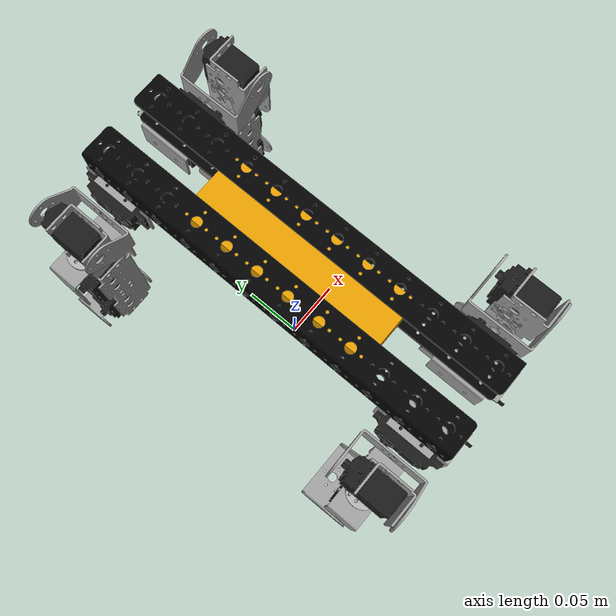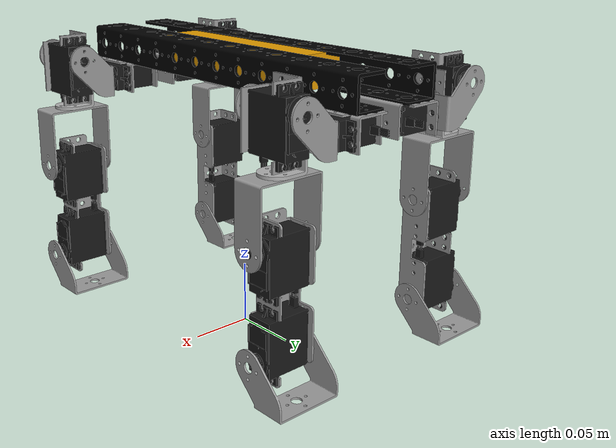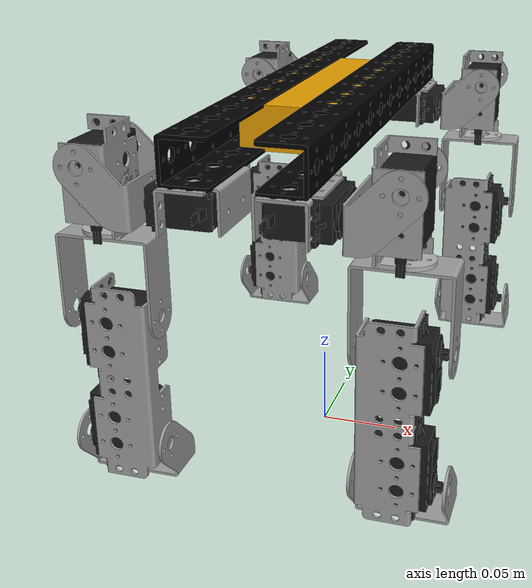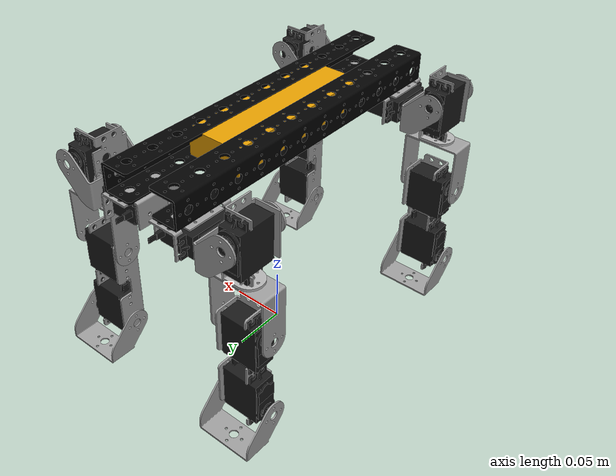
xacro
<?xml version="1.0"?>
<robot xmlns:xacro="http://www.ros.org/wiki/xacro" name="qp4">

	<xacro:property name="qp4_height" value="0.22" />

    <xacro:property name="cad_dir" value="file://$(find qp4_description)/../../assets/cad"/>

	<!-- Typically, STL/DAE model units are in mm, but RViz units are in m, hence models must be scaled down by 1000. -->
    <xacro:macro name="default_geometry" params="cad_file extension:=dae">
        <geometry>
           <mesh filename="${cad_dir}/${cad_file}.${extension}" scale="0.001 0.001 0.001"/>
        </geometry>
    </xacro:macro>

    <xacro:macro name="z_rot">
        <axis xyz="0 0 1"/>
    </xacro:macro>

	<xacro:include filename="$(find qp4_description)/urdf/qp4_materials.xacro"/>

    <xacro:include filename="$(find qp4_description)/urdf/qp4_parts_v2.xacro"/>

	<link name="base_link"></link>

 	<joint name="base_to_torso" type="fixed">
		<parent link="base_link"/>
		<child link="torso_link"/>
		<origin xyz="0 0 ${qp4_height}"/>
    </joint>

</robot>

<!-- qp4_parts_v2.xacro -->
<!-- QP4 parts -->
<robot xmlns:xacro="http://www.ros.org/wiki/xacro">

	<xacro:property name="eighth_inch" value="0.003175"/>
    <xacro:property name="quarter_inch" value="0.00635"/>
    <xacro:property name="half_inch" value="0.0127"/>
    <xacro:property name="inch" value="0.0254"/>

	<xacro:property name="body_length" value="${12*inch}"/>
    <xacro:property name="body_width" value="${3*inch}"/>

    <!-- Torso -->

    <link name="torso_link">
		<visual>
            <xacro:default_geometry cad_file="asb-512-black"/>
            <origin xyz="-${body_width/2} -${body_length/2} 0" rpy="${pi/2} -${pi/2} 0"/>
		</visual>
		<visual>
            <xacro:default_geometry cad_file="asb-512-black"/>
            <origin xyz="${body_width/2} -${body_length/2} 0" rpy="${pi/2} ${pi/2} 0"/>
		</visual>
		<visual>
        	<xacro:default_geometry cad_file="asb-04"/>
			<origin xyz="${(body_width/2) - half_inch} ${-((body_length/2)-inch)} ${-half_inch}" rpy="${-pi/2} 0 ${pi/2}"/>
		</visual>
		<visual>
	        <xacro:default_geometry cad_file="hs-645-mg"/>
	        <origin xyz="${(body_width/2) - inch} ${-((body_length/2)-inch)} ${-inch}" rpy="0 ${pi/2} 0"/>
		</visual>
		<visual>
        	<xacro:default_geometry cad_file="asb-04"/>
			<origin xyz="${(body_width/2) - half_inch} ${(body_length/2)-inch} ${-half_inch}" rpy="${-pi/2} 0 ${pi/2}"/>
		</visual>
		<visual>
	        <xacro:default_geometry cad_file="hs-645-mg"/>
	        <origin xyz="${(body_width/2) - inch} ${((body_length/2)-inch)} ${-inch}" rpy="0 ${-pi/2} ${pi}"/>
		</visual>
		<visual>
        	<xacro:default_geometry cad_file="asb-04"/>
			<origin xyz="${-((body_width/2) - half_inch)} ${-((body_length/2)-inch)} ${-half_inch}" rpy="${-pi/2} 0 ${-pi/2}"/>
		</visual>
		<visual>
	        <xacro:default_geometry cad_file="hs-645-mg"/>
	        <origin xyz="${-((body_width/2) - inch)} ${-((body_length/2)-inch)} ${-inch}" rpy="0 ${-pi/2} 0"/>
		</visual>
		<visual>
        	<xacro:default_geometry cad_file="asb-04"/>
			<origin xyz="${-((body_width/2) - half_inch)} ${(body_length/2)-inch} ${-half_inch}" rpy="${-pi/2} 0 ${-pi/2}"/>
		</visual>
		<visual>
	        <xacro:default_geometry cad_file="hs-645-mg"/>
	        <origin xyz="${-((body_width/2) - inch)} ${(body_length/2)-inch} ${-inch}" rpy="0 ${pi/2} ${pi}"/>
		</visual>
	    <visual>
   			<geometry>
				 <box size="${2*inch} ${6*inch} ${inch}"/>
			</geometry>
			<origin xyz="0 0 0"/>
   		</visual>
	    <collision>
   			<geometry>
				 <box size="${body_width} ${body_length} ${inch}"/>
   			</geometry>
			<origin xyz="0 0 0"/>
   		</collision>
	   	<collision>
   			<geometry>
				 <box size="${body_width + inch} ${2*inch} ${inch}"/>
   			</geometry>
			<origin xyz="0 ${(body_length/2)-inch} ${-inch}"/>
   		</collision>
	   	<collision>
   			<geometry>
				 <box size="${body_width + inch} ${2*inch} ${inch}"/>
   			</geometry>
			<origin xyz="0 ${-((body_length/2)-inch)} ${-inch}"/>
   		</collision>
        <inertial>
          <origin xyz="0 0 0"/>
          <mass value="1.0"/>
          <inertia  ixx="0.001" ixy="0.0"  ixz="0.0"  iyy="0.001"  iyz="0.0"  izz="0.001"/>
        </inertial>
	</link>

	<!-- Legs -->

	<xacro:macro name="leg" params="prefix reflect offset">

		<!-- Hip -->
		<link name="${prefix}_hip_link">
			<visual>
            	<xacro:default_geometry cad_file="asb-11"/>
            	<origin xyz="0 0 0" rpy="0 ${pi} ${reflect*-(pi/2)}"/>
			</visual>
		   	<collision>
	   			<geometry>
					 <box size="${1.5*inch} ${2*inch} ${1.75*inch}"/>
	   			</geometry>
				<origin xyz="${reflect*(0.75*inch)} 0 ${half_inch}"/>
	   		</collision>
		    <inertial>
		      <origin xyz="0 0 0"/>
		      <mass value="1.0"/>
		      <inertia  ixx="0.001" ixy="0.0"  ixz="0.0"  iyy="0.001"  iyz="0.0"  izz="0.001"/>
		    </inertial>
		</link>
	  	<joint name="${prefix}_hip_lateral_joint" type="revolute">
			<parent link="torso_link"/>
			<child link="${prefix}_hip_link"/>
			<origin xyz="${reflect * ((body_width/2) + (5*eighth_inch))} ${offset} ${-inch}" rpy="0 0 0"/>
			<axis xyz="1 0 0" />
			<limit lower="${-pi}" upper="${pi}" effort="10" velocity="1.0"/>
	  	</joint>

		<!-- Femur -->
		<link name="${prefix}_femur_link">
			<visual>
            	<xacro:default_geometry cad_file="asb-04"/>
				<origin xyz="${reflect*(-half_inch)} ${-quarter_inch} ${-(3*eighth_inch)}" rpy="0 ${reflect*(pi/2)} ${reflect*-(pi/2)}"/>
			</visual>
			<visual>
		        <xacro:default_geometry cad_file="hs-645-mg"/>
		        <origin xyz="0 ${-(6*eighth_inch)} ${-(3*eighth_inch)}" rpy="${pi/2} 0 ${pi}"/>
			</visual>
			<visual>
            	<xacro:default_geometry cad_file="asb-06"/>
            	<origin xyz="${reflect*-half_inch} 0 ${-(2*inch) + (3*eighth_inch)}" rpy="0 ${(pi/2)}  ${reflect*-(pi/2)}"/>
			</visual>
			<visual>
            	<xacro:default_geometry cad_file="asb-10"/>
            	<origin xyz="0 0 ${-(13*eighth_inch)}" rpy="${-pi/2} 0 0"/>
			</visual>
		   	<collision>
	   			<geometry>
					 <box size="${2*inch} ${2*inch} ${38*eighth_inch}"/>
	   			</geometry>
				<origin xyz="0 0 ${-13*eighth_inch}"/>
	   		</collision>
		    <inertial>
		      <origin xyz="0 0 0"/>
		      <mass value="1.0"/>
		      <inertia  ixx="0.001" ixy="0.0"  ixz="0.0"  iyy="0.001"  iyz="0.0"  izz="0.001"/>
		    </inertial>
		</link>

	  	<joint name="${prefix}_hip_swing_joint" type="revolute">
			<parent link="${prefix}_hip_link"/>
			<child link="${prefix}_femur_link"/>
			<origin xyz="${reflect * inch} 0 ${half_inch + quarter_inch}" rpy="0 0 0"/>
			<axis xyz="0 ${-reflect} 0" />
			<limit lower="${-pi}" upper="${pi}" effort="10" velocity="1.0"/>
	  	</joint>

		<!-- Tibia -->
		<link name="${prefix}_tibia_link">
			<visual>
            	<xacro:default_geometry cad_file="asb-15"/>
				<origin xyz="${reflect*-7*eighth_inch} ${-half_inch} ${-1.5*inch}" rpy="0 ${reflect*-(pi/2)} 0"/>
			</visual>
			<visual>
		        <xacro:default_geometry cad_file="hs-645-mg"/>
		        <origin xyz="${reflect*-(6*eighth_inch)} 0 ${-(3*eighth_inch)}" rpy="${pi/2} 0 ${reflect*(pi/2)}"/>
			</visual>
			<visual>
		        <xacro:default_geometry cad_file="hs-645-mg"/>
		        <origin xyz="${reflect*-(6*eighth_inch)} 0 ${-(21*eighth_inch)}" rpy="${pi/2} ${pi} ${reflect*(pi/2)}"/>
			</visual>
		   	<collision>
	   			<geometry>
					 <box size="${2*inch} ${1*inch} ${36*eighth_inch}"/>
	   			</geometry>
				<origin xyz="0 0 ${-12*eighth_inch}"/>
	   		</collision>
		    <inertial>
		      <origin xyz="0 0 0"/>
		      <mass value="1.0"/>
		      <inertia  ixx="0.001" ixy="0.0"  ixz="0.0"  iyy="0.001"  iyz="0.0"  izz="0.001"/>
		    </inertial>
		</link>

	  	<joint name="${prefix}_knee_joint" type="revolute">
			<parent link="${prefix}_femur_link"/>
			<child link="${prefix}_tibia_link"/>
			<origin xyz="0 0 ${-(4*inch) + half_inch }" rpy="0 0 0"/>
			<axis xyz="1 0 0" />
			<limit lower="${-pi}" upper="${pi}" effort="10" velocity="1.0"/>
	  	</joint>

		<!-- Foot -->
		<link name="${prefix}_foot_link">
			<visual>
				<xacro:default_geometry cad_file="asb-11"/>
				<origin xyz="0 ${6*eighth_inch} -${9*eighth_inch}" rpy="${pi/2} 0 ${pi}" />
			</visual>
		   	<collision>
	   			<geometry>
					 <box size="${2*inch} ${1.75*inch} ${1.5*inch}"/>
	   			</geometry>
				<origin xyz="0 ${3*eighth_inch} ${-3*eighth_inch}"/>
	   		</collision>
		    <inertial>
		      <origin xyz="0 0 0"/>
		      <mass value="1.0"/>
		      <inertia  ixx="0.001" ixy="0.0"  ixz="0.0"  iyy="0.001"  iyz="0.0"  izz="0.001"/>
		    </inertial>
		</link>
		<joint name="${prefix}_ankle_joint" type="revolute">
			<parent link="${prefix}_tibia_link"/>
			<child link="${prefix}_foot_link"/>
			<origin xyz="0 0 ${-3*inch}" rpy="0 0 0"/>
			<limit lower="${-pi}" upper="${pi}" effort="10" velocity="1.0"/>
	  	</joint>

	</xacro:macro>

	<xacro:leg prefix="back_right" reflect="1" offset="${-((body_length/2)-inch)}"/>
	<xacro:leg prefix="back_left" reflect="-1" offset="${-((body_length/2)-inch)}"/>
	<xacro:leg prefix="front_right" reflect="1" offset="${(body_length/2)-inch}"/>
	<xacro:leg prefix="front_left" reflect="-1" offset="${(body_length/2)-inch}"/>

</robot>
